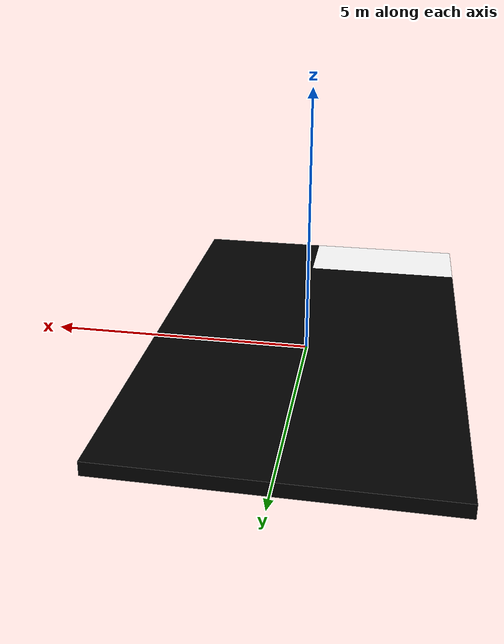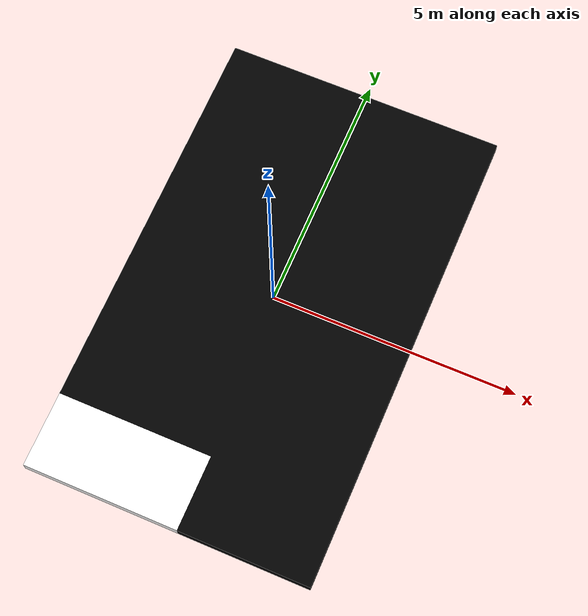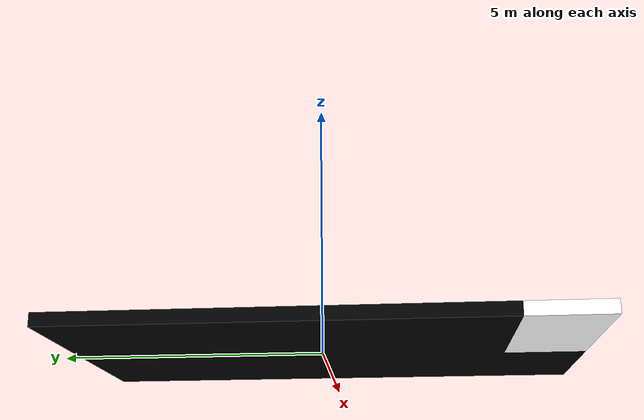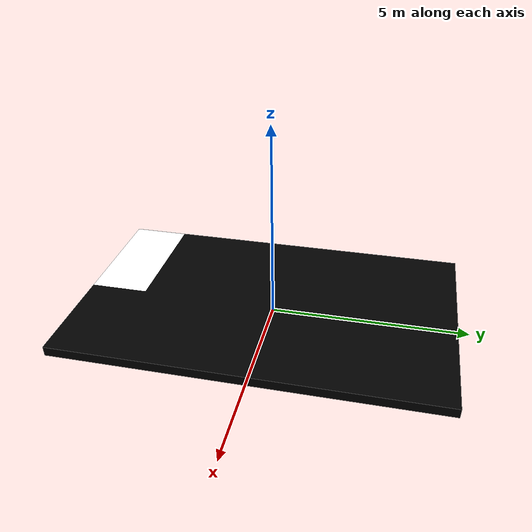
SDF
<?xml version="1.0" ?>
<sdf version="1.5">
  <model name="blackroom-floor">
    <static>true</static>
    <link name="link">
      <collision name="collision">
        <geometry>
          <mesh>
            <uri>model://blackroom-floor/mesh/blackroom-floor.dae</uri>
          </mesh>
        </geometry>
        <surface>
          <friction>
            <torsional>
              <coefficient>0.0</coefficient>
            </torsional>
            <ode>
              <mu>0</mu>
              <mu2>0</mu2>
            </ode>
          </friction>
        </surface>
      </collision>
      <visual name="visual">
        <geometry>
          <mesh>
            <uri>model://blackroom-floor/mesh/blackroom-floor.dae</uri>
          </mesh>
        </geometry>
      </visual>
    </link>
  </model>
</sdf>
